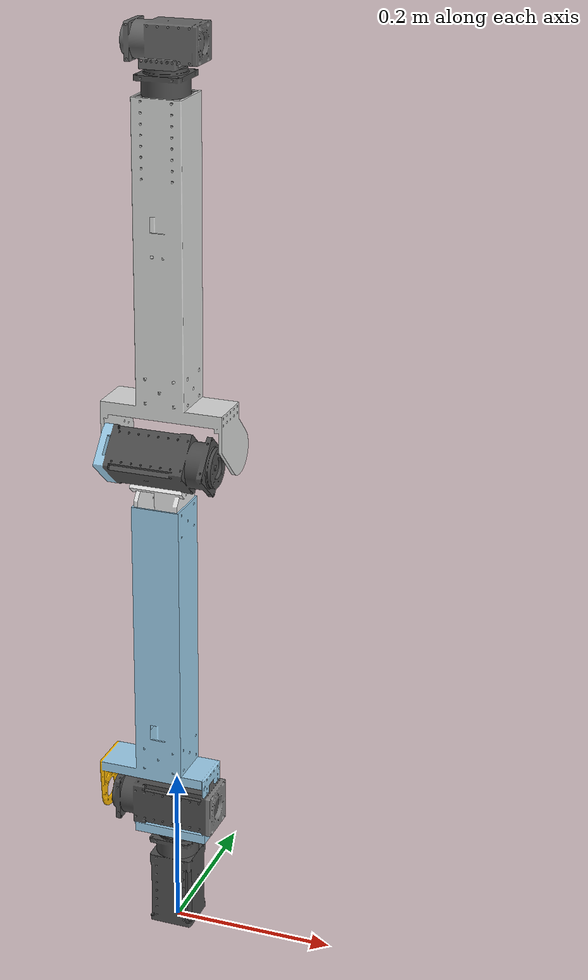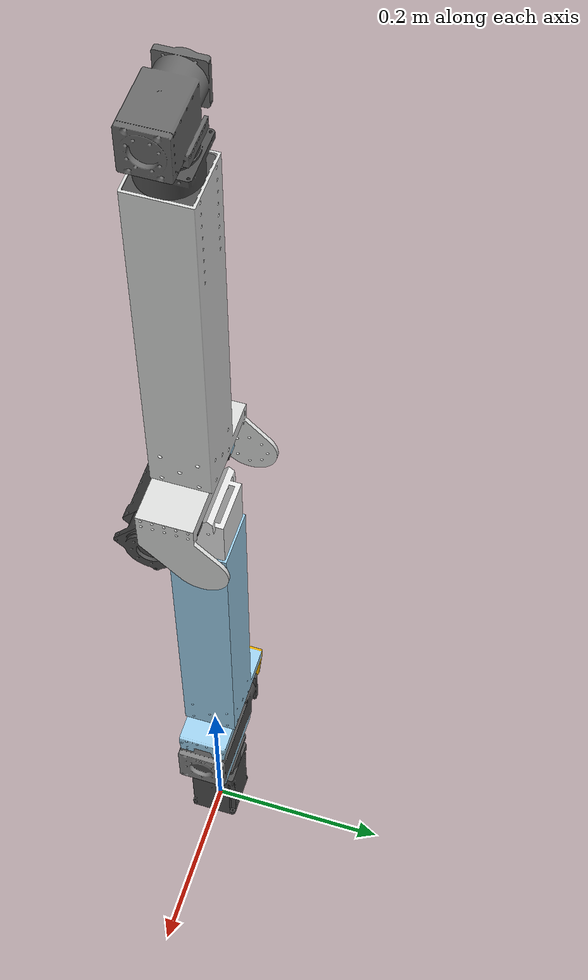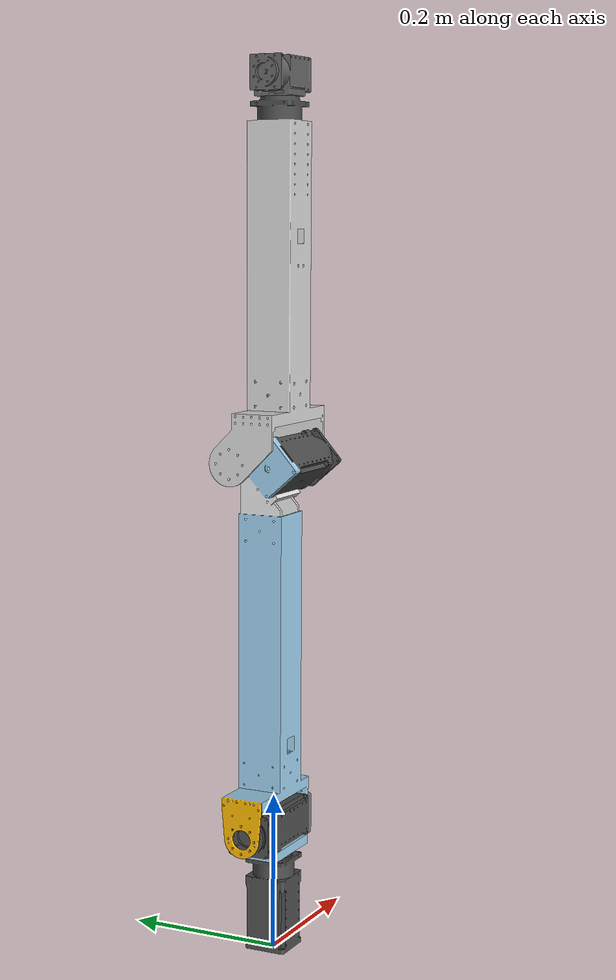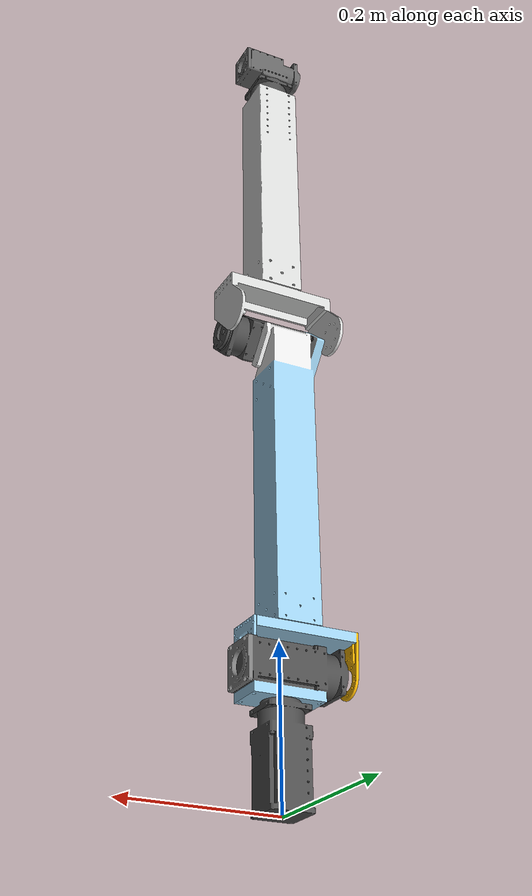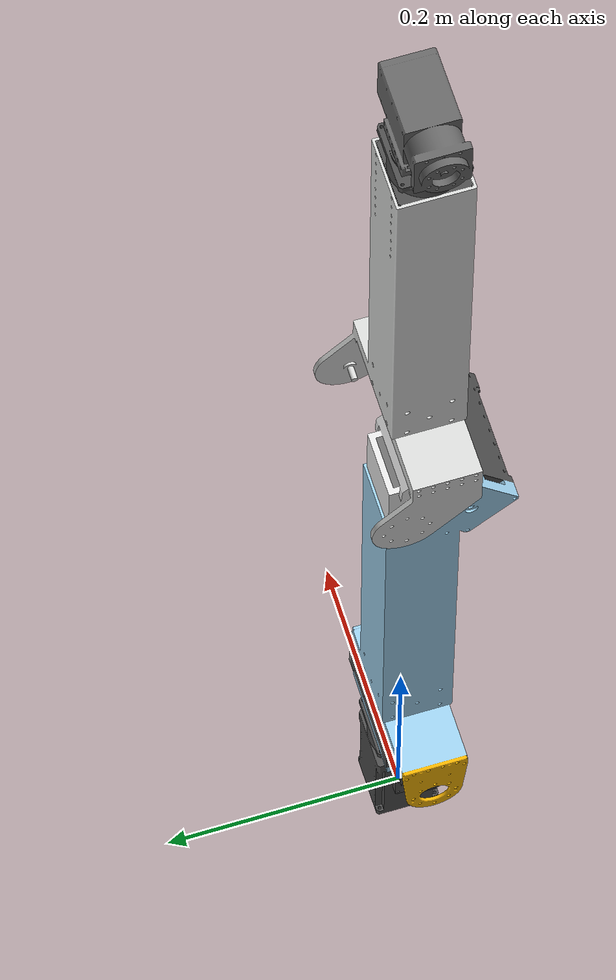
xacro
<?xml version="1.0" encoding="utf-8"?>
<robot xmlns:xacro="http://www.ros.org/wiki/xacro" name="timon">
  <link name = "world">
  </link>
  <xacro:include filename="$(find manipulator_description)/robots/timon_arm.urdf.xacro"/>

    <joint name ="base_to_timon" type="fixed">
        <origin rpy="0 0 0" xyz="0 0 0"/>
        <parent link="world"/>
        <child link = "invisible_link"/>
    </joint>

</robot>

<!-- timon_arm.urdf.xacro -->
<robot xmlns:xacro="http://www.ros.org/wiki/xacro" name="timon">
  <gazebo>
      <plugin name="gazebo_ros_control" filename="libgazebo_ros_control.so">
          <robotNamespace>timon</robotNamespace>
      </plugin>
  </gazebo>
  <xacro:include filename="$(find manipulator_description)/robots/timon_arm.xacro" />
  <xacro:timon_arm />
</robot>

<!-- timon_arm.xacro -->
<robot xmlns:xacro="http://www.ros.org/wiki/xacro" name="timon">
  <xacro:macro name="timon_arm" params="arm_id:='timon' description_pkg:='manipulator_description' connected_to:='' xyz:='0 0 0' rpy:='0 0 0'">
    <link name="invisible_link">
      <visual>
        <origin xyz="0 0 0" rpy="0 0 0" />
        <geometry>
          <box size="0.000001 0.000001 0.000001"/>
        </geometry>
      </visual>
      <collision>
        <origin xyz="0 0 0" rpy="0 0 0" />
        <geometry>
          <box size="0.000001 0.000001 0.000001"/>
        </geometry>
      </collision>
    </link>
    <link name="${arm_id}_link0">
      <visual>
        <origin xyz="0 0 0" rpy="0 0 0" />
        <geometry>
          <mesh filename="package://${description_pkg}/meshes/JeRoTIMON/id_1.dae"/>
        </geometry>
      </visual>
      <collision>
        <origin xyz="0 0 0" rpy="0 0 0" />
        <geometry>
          <mesh filename="package://${description_pkg}/meshes/JeRoTIMON/id_1.dae"/>
        </geometry>
      </collision>
      <inertial>
        <origin xyz="0 0 0" rpy="0 0 0 "/>
        <mass value="3.72486532"/>
        <inertia ixx="0.011"  ixy="-9.466e-9"  ixz="-0.00000563" iyy="0.04868026" iyz="0" izz="0.05388592" />
      </inertial>
    </link>
     <joint name ="invisble_joint" type="fixed">
        <origin rpy="0 0 3.14" xyz="0 0 0"/>
        <parent link="invisible_link"/>
        <child link = "${arm_id}_link0"/>
      </joint>

    <link name="${arm_id}_link1">
      <visual>
        <origin xyz="0 0 0" rpy="0 0 0" />
        <geometry>
          <mesh filename="package://${description_pkg}/meshes/JeRoTIMON/id_2.dae"/>
        </geometry>
      </visual>
      <collision>
        <origin xyz="0 0 0" rpy="0 0 0" />
        <geometry>
          <mesh filename="package://${description_pkg}/meshes/JeRoTIMON/id_2.dae"/>
        </geometry>
      </collision>
      <inertial>
        <origin xyz="0 0 0" rpy="0 0 0 "/>
        <mass value="1.00643107"/>
        <inertia ixx="0.00055282"  ixy="0"  ixz="-0.00005159" iyy="0.00152712" iyz="0.00000e+0" izz="0.00141817" />
      </inertial>
    </link>
    <joint name="id_1" type="revolute">
      <origin rpy="0 0 0" xyz="0 0 0.12715351"/>
      <parent link="${arm_id}_link0"/>
      <child link="${arm_id}_link1"/>
      <axis xyz="0 0 1" rpy="0 0 0"/>
      <limit effort="1000.0" lower="-0.8" upper="0.8" velocity="0.5"/>
    </joint>

    <link name="${arm_id}_link2">
      <visual>
        <origin xyz="0 0 0" rpy="0 0 0" />
        <geometry>
          <mesh filename="package://${description_pkg}/meshes/JeRoTIMON/id_3.dae"/>
        </geometry>
      </visual>
      <collision>
        <origin xyz="0 0 0" rpy="0 0 0" />
        <geometry>
          <mesh filename="package://${description_pkg}/meshes/JeRoTIMON/id_3.dae"/>
        </geometry>
      </collision>
      <inertial>
        <origin xyz="0 0 0" rpy="0 0 0 "/>
        <mass value="1.96131158"/>
        <inertia ixx="0.0593682"  ixy="0.00019981"  ixz="0.0024082" iyy="0.06052018" iyz="-0.00320203" izz="0.00314458" />
      </inertial>
    </link>
    <joint name="id_2" type="revolute">
      <origin rpy="0 0 0" xyz="0.01099894 0 0.03900000"/>
      <parent link="${arm_id}_link1"/>
      <child link="${arm_id}_link2"/>
      <axis xyz="1 0 0" rpy="0 0 0"/>
      <limit effort="1000.0" lower="-1.5708" upper="1.5708" velocity="0.5"/>
    </joint>

    <link name="${arm_id}_link3">
      <visual>
        <origin xyz="0 0 0" rpy="0 0 0" />
        <geometry>
          <mesh filename="package://${description_pkg}/meshes/JeRoTIMON/id_4.dae"/>
        </geometry>
      </visual>
      <collision>
        <origin xyz="0 0 0" rpy="0 0 0" />
        <geometry>
          <mesh filename="package://${description_pkg}/meshes/JeRoTIMON/id_4.dae"/>
        </geometry>
      </collision>
      <inertial>
        <origin xyz="0 0 0" rpy="0 0 0"/>
        <mass value="1.96131158"/>
        <inertia ixx="0.0593682"  ixy="0.00019981"  ixz="0.0024082" iyy="0.06052018" iyz="-0.00320203" izz="0.00314458" />
      </inertial>
    </link>
    <joint name="id_3" type="revolute">
      <origin rpy="0 0.0 0.0" xyz="-0.00872107 -0.02468844 0.46468251"/>
      <parent link="${arm_id}_link2"/>
      <child link="${arm_id}_link3"/>
      <axis xyz="1 0 0" rpy="0 0 0"/>
      <limit effort="1000.0" lower="-0.74" upper="3.03" velocity="0.5"/>
    </joint>

    <link name="${arm_id}_link4">
      <visual>
        <origin xyz="0 0 0" rpy="0 0 0" />
        <geometry>
          <mesh filename="package://${description_pkg}/meshes/JeRoTIMON/id_5.dae"/>
        </geometry>
      </visual>
      <collision>
        <origin xyz="0 0 0" rpy="0 0 0" />
        <geometry>
          <mesh filename="package://${description_pkg}/meshes/JeRoTIMON/id_5.dae"/>
        </geometry>
      </collision>
      <inertial>
        <origin xyz="0 0 0" rpy="0 0 0 "/>
        <mass value="0.37561629"/>
        <inertia ixx="0.00025385"  ixy="0"  ixz="0" iyy="0.00011288" iyz="0.00000228" izz="0.00025011" />
      </inertial>
    </link>
    <joint name="id_4" type="revolute">
      <safety_controller k_position="100.0" k_velocity="40.0" soft_lower_limit="-2.974" soft_upper_limit="2.974"/>
      <origin rpy="0 0 0" xyz="0.00025000 0.03075115 0.44053087"/>
      <parent link="${arm_id}_link3"/>
      <child link="${arm_id}_link4"/>
      <axis xyz="0 0 -1"/>
      <limit effort="1000.0" lower="-2.974" upper="2.974" velocity="0.5"/>
    </joint>

    <transmission name="trans_timon_joint1">
        <type>transmission_interface/SimpleTransmission</type>
        <joint name="id_1">
            <hardwareInterface>hardware_interface/PositionJointInterface</hardwareInterface>
        </joint>
        <actuator name="timon_joint1_motor">
            <hardwareInterface>hardware_interface/PositionJointInterface</hardwareInterface>
            <mechanicalReduction>1</mechanicalReduction>
        </actuator>
    </transmission>
    <transmission name="trans_timon_joint2">
        <type>transmission_interface/SimpleTransmission</type>
        <joint name="id_2">
            <hardwareInterface>hardware_interface/PositionJointInterface</hardwareInterface>
        </joint>
        <actuator name="timon_joint2_motor">
            <hardwareInterface>hardware_interface/PositionJointInterface</hardwareInterface>
            <mechanicalReduction>1</mechanicalReduction>
        </actuator>
    </transmission>
    <transmission name="trans_timon_joint3">
        <type>transmission_interface/SimpleTransmission</type>
        <joint name="id_3">
            <hardwareInterface>hardware_interface/PositionJointInterface</hardwareInterface>
        </joint>
        <actuator name="timon_joint3_motor">
            <hardwareInterface>hardware_interface/PositionJointInterface</hardwareInterface>
            <mechanicalReduction>1</mechanicalReduction>
        </actuator>
    </transmission>
    <transmission name="trans_timon_joint4">
        <type>transmission_interface/SimpleTransmission</type>
        <joint name="id_4">
            <hardwareInterface>hardware_interface/PositionJointInterface</hardwareInterface>
        </joint>
        <actuator name="timon_joint4_motor">
            <hardwareInterface>hardware_interface/PositionJointInterface</hardwareInterface>
            <mechanicalReduction>1</mechanicalReduction>
        </actuator>
    </transmission>
  </xacro:macro>
</robot>
